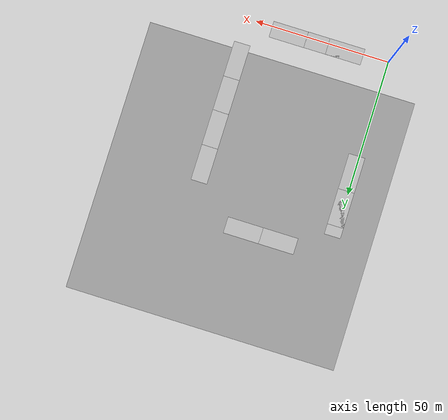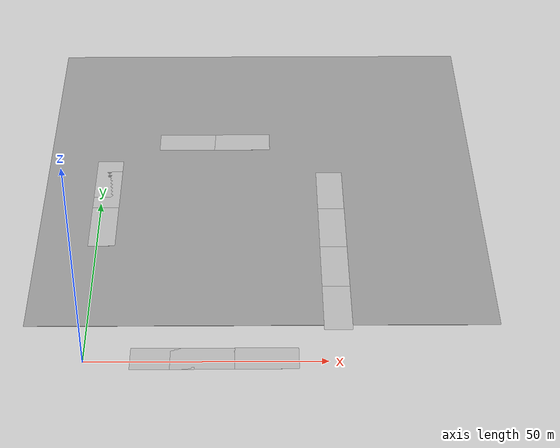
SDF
<sdf version="1.6">
 <world name="default">
  <model name="ground_plane">
   <pose>0 0 -1 0 -0 0</pose>
   <static>1</static>
   <link name="link">
    <collision name="collision">
     <geometry><plane><normal>0 0 1</normal><size>100 100</size></plane></geometry>
     <surface><friction><ode><mu>100</mu><mu2>50</mu2></ode></friction></surface>
    </collision>
    <visual name="visual">
     <cast_shadows>0</cast_shadows>
     <geometry><plane><normal>0 0 1</normal><size>100 100</size></plane></geometry>
     <material>
      <script><uri>file://media/materials/scripts/gazebo.material</uri><name>Gazebo/Grey</name></script>
     </material>
    </visual>
   </link>
  </model>
  <model name="road_1">
   <link name="body">
    <visual name="visual">
     <geometry><mesh><uri>file://road.dae</uri></mesh></geometry>
     <material><shader type="pixel"/></material>
    </visual>
   </link>
   <static>1</static>
   <pose>1.0181 42.2978 0 0 -0 0</pose>
  </model>
  <model name="road_2">
   <link name="body">
    <visual name="visual">
     <geometry><mesh><uri>file://road.dae</uri></mesh></geometry>
     <material><shader type="pixel"/></material>
    </visual>
   </link>
   <static>1</static>
   <pose>1.04905 55.4953 0 0 -0 0</pose>
  </model>
  <model name="road_3">
   <link name="body">
    <visual name="visual">
     <geometry><mesh><uri>file://road.dae</uri></mesh></geometry>
     <material><shader type="pixel"/></material>
    </visual>
   </link>
   <static>1</static>
   <pose>1.03683 59.2867 0 0 -0 0</pose>
  </model>
  <model name="road_4_clone_clone">
   <link name="body">
    <visual name="visual">
     <geometry><mesh><uri>file://road.dae</uri></mesh></geometry>
     <material><shader type="pixel"/></material>
    </visual>
   </link>
   <static>1</static>
   <pose>37.3595 0.974527 0 0 -0 1.57</pose>
  </model>
  <model name="road_4_clone_clone_0">
   <link name="body">
    <visual name="visual">
     <geometry><mesh><uri>file://road.dae</uri></mesh></geometry>
     <material><shader type="pixel"/></material>
    </visual>
   </link>
   <static>1</static>
   <pose>24.265 0.952006 0 0 -0 1.57</pose>
  </model>
  <model name="road_4_clone_clone_1">
   <link name="body">
    <visual name="visual">
     <geometry><mesh><uri>file://road.dae</uri></mesh></geometry>
     <material><shader type="pixel"/></material>
    </visual>
   </link>
   <static>1</static>
   <pose>16.1017 0.938572 0 0 -0 1.57</pose>
  </model>
  <model name="road_4_clone_2">
   <link name="body">
    <visual name="visual">
     <geometry><mesh><uri>file://road.dae</uri></mesh></geometry>
     <material><shader type="pixel"/></material>
    </visual>
   </link>
   <static>1</static>
   <pose>52.4051 15.7075 0 0 -0 0</pose>
  </model>
  <model name="road_4_clone_3">
   <link name="body">
    <visual name="visual">
     <geometry><mesh><uri>file://road.dae</uri></mesh></geometry>
     <material><shader type="pixel"/></material>
    </visual>
   </link>
   <static>1</static>
   <pose>52.4117 28.5897 0 0 -0 0</pose>
  </model>
  <model name="road_4_clone_4">
   <link name="body">
    <visual name="visual">
     <geometry><mesh><uri>file://road.dae</uri></mesh></geometry>
     <material><shader type="pixel"/></material>
    </visual>
   </link>
   <static>1</static>
   <pose>52.4232 41.7004 0 0 -0 0</pose>
  </model>
  <model name="road_4_clone_5">
   <link name="body">
    <visual name="visual">
     <geometry><mesh><uri>file://road.dae</uri></mesh></geometry>
     <material><shader type="pixel"/></material>
    </visual>
   </link>
   <static>1</static>
   <pose>52.4065 54.872 0 0 -0 0</pose>
  </model>
  <model name="road_4_clone_clone_1_clone_9">
   <link name="body">
    <visual name="visual">
     <geometry><mesh><uri>file://road.dae</uri></mesh></geometry>
     <material><shader type="pixel"/></material>
    </visual>
   </link>
   <static>1</static>
   <pose>32.0391 73.3017 0 0 -0 1.57</pose>
  </model>
  <model name="road_4_clone_clone_1_clone_10">
   <link name="body">
    <visual name="visual">
     <geometry><mesh><uri>file://road.dae</uri></mesh></geometry>
     <material><shader type="pixel"/></material>
    </visual>
   </link>
   <static>1</static>
   <pose>19.0114 73.3023 0 0 -0 1.57</pose>
  </model>
  <model name="ground_plane_1">
   <static>1</static>
   <link name="link">
    <collision name="collision">
     <geometry><plane><normal>0 0 1</normal><size>100 100</size></plane></geometry>
     <surface>
      <contact><collide_bitmask>65535</collide_bitmask></contact>
      <friction><ode><mu>100</mu><mu2>50</mu2></ode></friction>
     </surface>
    </collision>
    <visual name="visual">
     <cast_shadows>0</cast_shadows>
     <geometry><plane><normal>0 0 1</normal><size>100 100</size></plane></geometry>
     <material>
      <script><uri>file://media/materials/scripts/gazebo.material</uri><name>Gazebo/Grey</name></script>
     </material>
    </visual>
   </link>
   <pose>36.5402 61.4232 -1 0 -0 0</pose>
  </model>
 </world>
</sdf>
